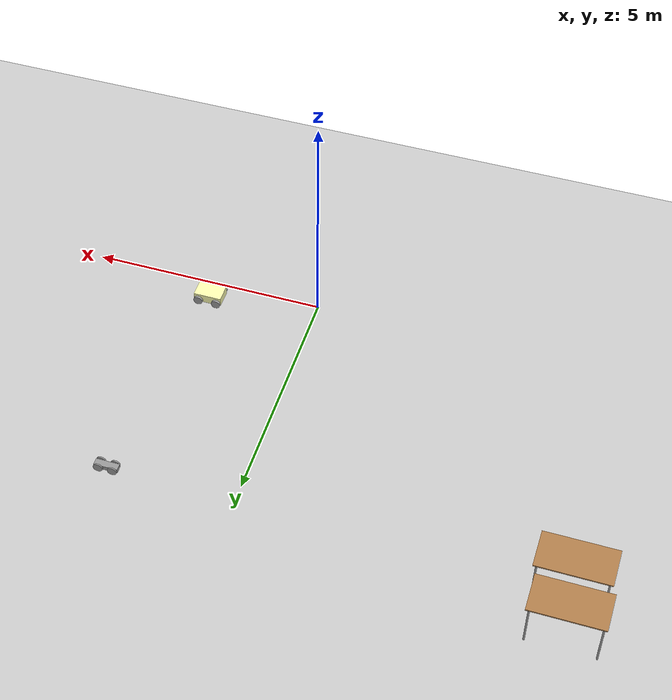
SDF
<sdf version="1.7">
 <world name="default">
  <model name="ground_plane">
   <static>1</static>
   <link name="link">
    <collision name="collision">
     <geometry><plane><normal>0 0 1</normal><size>100 100</size></plane></geometry>
     <surface>
      <contact><collide_bitmask>65535</collide_bitmask></contact>
      <friction><ode><mu>100</mu><mu2>50</mu2></ode></friction>
     </surface>
    </collision>
    <visual name="visual">
     <cast_shadows>0</cast_shadows>
     <geometry><plane><normal>0 0 1</normal><size>100 100</size></plane></geometry>
     <material>
      <script><uri>file://media/materials/scripts/gazebo.material</uri><name>Gazebo/Grey</name></script>
     </material>
    </visual>
   </link>
  </model>
  <model name="table">
   <static>1</static>
   <link name="link">
    <collision name="surface">
     <pose>0 0 1 0 -0 0</pose>
     <geometry><box><size>1.5 0.8 0.03</size></box></geometry>
     <surface><friction><ode><mu>0.6</mu><mu2>0.6</mu2></ode></friction></surface>
    </collision>
    <visual name="visual1">
     <pose>0 0 1 0 -0 0</pose>
     <geometry><box><size>1.5 0.8 0.03</size></box></geometry>
     <material>
      <script><uri>file://media/materials/scripts/gazebo.material</uri><name>Gazebo/Wood</name></script>
     </material>
    </visual>
    <collision name="front_left_leg">
     <pose>0.68 0.38 0.5 0 -0 0</pose>
     <geometry><cylinder><radius>0.02</radius><length>1</length></cylinder></geometry>
    </collision>
    <visual name="front_left_leg">
     <pose>0.68 0.38 0.5 0 -0 0</pose>
     <geometry><cylinder><radius>0.02</radius><length>1</length></cylinder></geometry>
     <material>
      <script><uri>file://media/materials/scripts/gazebo.material</uri><name>Gazebo/Grey</name></script>
     </material>
    </visual>
    <collision name="front_right_leg">
     <pose>0.68 -0.38 0.5 0 -0 0</pose>
     <geometry><cylinder><radius>0.02</radius><length>1</length></cylinder></geometry>
    </collision>
    <visual name="front_right_leg">
     <pose>0.68 -0.38 0.5 0 -0 0</pose>
     <geometry><cylinder><radius>0.02</radius><length>1</length></cylinder></geometry>
     <material>
      <script><uri>file://media/materials/scripts/gazebo.material</uri><name>Gazebo/Grey</name></script>
     </material>
    </visual>
    <collision name="back_right_leg">
     <pose>-0.68 -0.38 0.5 0 -0 0</pose>
     <geometry><cylinder><radius>0.02</radius><length>1</length></cylinder></geometry>
    </collision>
    <visual name="back_right_leg">
     <pose>-0.68 -0.38 0.5 0 -0 0</pose>
     <geometry><cylinder><radius>0.02</radius><length>1</length></cylinder></geometry>
     <material>
      <script><uri>file://media/materials/scripts/gazebo.material</uri><name>Gazebo/Grey</name></script>
     </material>
    </visual>
    <collision name="back_left_leg">
     <pose>-0.68 0.38 0.5 0 -0 0</pose>
     <geometry><cylinder><radius>0.02</radius><length>1</length></cylinder></geometry>
    </collision>
    <visual name="back_left_leg">
     <pose>-0.68 0.38 0.5 0 -0 0</pose>
     <geometry><cylinder><radius>0.02</radius><length>1</length></cylinder></geometry>
     <material>
      <script><uri>file://media/materials/scripts/gazebo.material</uri><name>Gazebo/Grey</name></script>
     </material>
    </visual>
   </link>
   <pose>-6.73396 6.32462 0 0 -0 0</pose>
  </model>
  <model name="table_clone">
   <static>1</static>
   <link name="link">
    <collision name="surface">
     <pose>0 0 1 0 -0 0</pose>
     <geometry><box><size>1.5 0.8 0.03</size></box></geometry>
     <surface><friction><ode><mu>0.6</mu><mu2>0.6</mu2></ode></friction></surface>
    </collision>
    <visual name="visual1">
     <pose>0 0 1 0 -0 0</pose>
     <geometry><box><size>1.5 0.8 0.03</size></box></geometry>
     <material>
      <script><uri>file://media/materials/scripts/gazebo.material</uri><name>Gazebo/Wood</name></script>
     </material>
    </visual>
    <collision name="front_left_leg">
     <pose>0.68 0.38 0.5 0 -0 0</pose>
     <geometry><cylinder><radius>0.02</radius><length>1</length></cylinder></geometry>
    </collision>
    <visual name="front_left_leg">
     <pose>0.68 0.38 0.5 0 -0 0</pose>
     <geometry><cylinder><radius>0.02</radius><length>1</length></cylinder></geometry>
     <material>
      <script><uri>file://media/materials/scripts/gazebo.material</uri><name>Gazebo/Grey</name></script>
     </material>
    </visual>
    <collision name="front_right_leg">
     <pose>0.68 -0.38 0.5 0 -0 0</pose>
     <geometry><cylinder><radius>0.02</radius><length>1</length></cylinder></geometry>
    </collision>
    <visual name="front_right_leg">
     <pose>0.68 -0.38 0.5 0 -0 0</pose>
     <geometry><cylinder><radius>0.02</radius><length>1</length></cylinder></geometry>
     <material>
      <script><uri>file://media/materials/scripts/gazebo.material</uri><name>Gazebo/Grey</name></script>
     </material>
    </visual>
    <collision name="back_right_leg">
     <pose>-0.68 -0.38 0.5 0 -0 0</pose>
     <geometry><cylinder><radius>0.02</radius><length>1</length></cylinder></geometry>
    </collision>
    <visual name="back_right_leg">
     <pose>-0.68 -0.38 0.5 0 -0 0</pose>
     <geometry><cylinder><radius>0.02</radius><length>1</length></cylinder></geometry>
     <material>
      <script><uri>file://media/materials/scripts/gazebo.material</uri><name>Gazebo/Grey</name></script>
     </material>
    </visual>
    <collision name="back_left_leg">
     <pose>-0.68 0.38 0.5 0 -0 0</pose>
     <geometry><cylinder><radius>0.02</radius><length>1</length></cylinder></geometry>
    </collision>
    <visual name="back_left_leg">
     <pose>-0.68 0.38 0.5 0 -0 0</pose>
     <geometry><cylinder><radius>0.02</radius><length>1</length></cylinder></geometry>
     <material>
      <script><uri>file://media/materials/scripts/gazebo.material</uri><name>Gazebo/Grey</name></script>
     </material>
    </visual>
   </link>
   <pose>-6.6553 5.36265 0 0 -0 0</pose>
  </model>
  <model name="vehicleRobot">
   <link name="link_3">
    <pose>0 -0.0017 0 0 -0 0</pose>
    <inertial>
     <mass>1</mass>
     <inertia>
      <ixx>0.166667</ixx>
      <ixy>0</ixy>
      <ixz>0</ixz>
      <iyy>0.166667</iyy>
      <iyz>0</iyz>
      <izz>0.166667</izz>
     </inertia>
    </inertial>
    <visual name="visual">
     <geometry><box><size>0.5 0.15 0.1</size></box></geometry>
     <material>
      <lighting>1</lighting>
      <script><uri>file://media/materials/scripts/gazebo.material</uri><name>Gazebo/Grey</name></script>
      <shader type="pixel"><normal_map>__default__</normal_map></shader>
      <ambient>0.3 0.3 0.3 1</ambient>
      <diffuse>0.7 0.7 0.7 1</diffuse>
      <specular>0.01 0.01 0.01 1</specular>
      <emissive>0 0 0 1</emissive>
     </material>
    </visual>
    <collision name="collision">
     <geometry><box><size>0.5 0.15 0.1</size></box></geometry>
     <surface>
      <friction>
       <ode><mu>1</mu><mu2>1</mu2><fdir1>0 0 0</fdir1><slip1>0</slip1><slip2>0</slip2></ode>
       <torsional>
        <coefficient>1</coefficient>
        <patch_radius>0</patch_radius>
        <surface_radius>0</surface_radius>
        <use_patch_radius>1</use_patch_radius>
        <ode><slip>0</slip></ode>
       </torsional>
      </friction>
      <bounce><restitution_coefficient>0</restitution_coefficient><threshold>1e+06</threshold></bounce>
      <contact>
       <collide_without_contact>0</collide_without_contact>
       <collide_without_contact_bitmask>1</collide_without_contact_bitmask>
       <collide_bitmask>1</collide_bitmask>
       <ode>
        <soft_cfm>0</soft_cfm>
        <soft_erp>0.2</soft_erp>
        <kp>1e+13</kp>
        <kd>1</kd>
        <max_vel>0.01</max_vel>
        <min_depth>0</min_depth>
       </ode>
       <bullet>
        <split_impulse>1</split_impulse>
        <split_impulse_penetration_threshold>-0.01</split_impulse_penetration_threshold>
        <soft_cfm>0</soft_cfm>
        <soft_erp>0.2</soft_erp>
        <kp>1e+13</kp>
        <kd>1</kd>
       </bullet>
      </contact>
     </surface>
    </collision>
   </link>
   <link name="link_4_clone">
    <pose>-0.15 -0.0917 0 1.5708 -0 0</pose>
    <inertial>
     <mass>1</mass>
     <inertia><ixx>0.145833</ixx><ixy>0</ixy><ixz>0</ixz><iyy>0.145833</iyy><iyz>0</iyz><izz>0.125</izz></inertia>
    </inertial>
    <visual name="visual">
     <geometry><cylinder><radius>0.1</radius><length>0.03</length></cylinder></geometry>
     <material>
      <lighting>1</lighting>
      <script><uri>file://media/materials/scripts/gazebo.material</uri><name>Gazebo/Grey</name></script>
      <shader type="pixel"><normal_map>__default__</normal_map></shader>
      <ambient>0.3 0.3 0.3 1</ambient>
      <diffuse>0.7 0.7 0.7 1</diffuse>
      <specular>0.01 0.01 0.01 1</specular>
      <emissive>0 0 0 1</emissive>
     </material>
    </visual>
    <collision name="collision">
     <geometry><cylinder><radius>0.1</radius><length>0.03</length></cylinder></geometry>
     <surface>
      <friction>
       <ode><mu>1</mu><mu2>1</mu2><fdir1>0 0 0</fdir1><slip1>0</slip1><slip2>0</slip2></ode>
       <torsional>
        <coefficient>1</coefficient>
        <patch_radius>0</patch_radius>
        <surface_radius>0</surface_radius>
        <use_patch_radius>1</use_patch_radius>
        <ode><slip>0</slip></ode>
       </torsional>
      </friction>
      <bounce><restitution_coefficient>0</restitution_coefficient><threshold>1e+06</threshold></bounce>
      <contact>
       <collide_without_contact>0</collide_without_contact>
       <collide_without_contact_bitmask>1</collide_without_contact_bitmask>
       <collide_bitmask>1</collide_bitmask>
       <ode>
        <soft_cfm>0</soft_cfm>
        <soft_erp>0.2</soft_erp>
        <kp>1e+13</kp>
        <kd>1</kd>
        <max_vel>0.01</max_vel>
        <min_depth>0</min_depth>
       </ode>
       <bullet>
        <split_impulse>1</split_impulse>
        <split_impulse_penetration_threshold>-0.01</split_impulse_penetration_threshold>
        <soft_cfm>0</soft_cfm>
        <soft_erp>0.2</soft_erp>
        <kp>1e+13</kp>
        <kd>1</kd>
       </bullet>
      </contact>
     </surface>
    </collision>
   </link>
   <link name="link_4_clone_0">
    <pose>0.15 -0.0917 -0 1.5708 -0 0</pose>
    <inertial>
     <mass>1</mass>
     <inertia><ixx>0.145833</ixx><ixy>0</ixy><ixz>0</ixz><iyy>0.145833</iyy><iyz>0</iyz><izz>0.125</izz></inertia>
    </inertial>
    <visual name="visual">
     <geometry><cylinder><radius>0.1</radius><length>0.03</length></cylinder></geometry>
     <material>
      <lighting>1</lighting>
      <script><uri>file://media/materials/scripts/gazebo.material</uri><name>Gazebo/Grey</name></script>
      <shader type="pixel"><normal_map>__default__</normal_map></shader>
      <ambient>0.3 0.3 0.3 1</ambient>
      <diffuse>0.7 0.7 0.7 1</diffuse>
      <specular>0.01 0.01 0.01 1</specular>
      <emissive>0 0 0 1</emissive>
     </material>
    </visual>
    <collision name="collision">
     <geometry><cylinder><radius>0.1</radius><length>0.03</length></cylinder></geometry>
     <surface>
      <friction>
       <ode><mu>1</mu><mu2>1</mu2><fdir1>0 0 0</fdir1><slip1>0</slip1><slip2>0</slip2></ode>
       <torsional>
        <coefficient>1</coefficient>
        <patch_radius>0</patch_radius>
        <surface_radius>0</surface_radius>
        <use_patch_radius>1</use_patch_radius>
        <ode><slip>0</slip></ode>
       </torsional>
      </friction>
      <bounce><restitution_coefficient>0</restitution_coefficient><threshold>1e+06</threshold></bounce>
      <contact>
       <collide_without_contact>0</collide_without_contact>
       <collide_without_contact_bitmask>1</collide_without_contact_bitmask>
       <collide_bitmask>1</collide_bitmask>
       <ode>
        <soft_cfm>0</soft_cfm>
        <soft_erp>0.2</soft_erp>
        <kp>1e+13</kp>
        <kd>1</kd>
        <max_vel>0.01</max_vel>
        <min_depth>0</min_depth>
       </ode>
       <bullet>
        <split_impulse>1</split_impulse>
        <split_impulse_penetration_threshold>-0.01</split_impulse_penetration_threshold>
        <soft_cfm>0</soft_cfm>
        <soft_erp>0.2</soft_erp>
        <kp>1e+13</kp>
        <kd>1</kd>
       </bullet>
      </contact>
     </surface>
    </collision>
   </link>
   <link name="link_4_clone_1">
    <pose>-0.15 0.09255 0 1.5708 -0 0</pose>
    <inertial>
     <mass>1</mass>
     <inertia><ixx>0.145833</ixx><ixy>0</ixy><ixz>0</ixz><iyy>0.145833</iyy><iyz>0</iyz><izz>0.125</izz></inertia>
    </inertial>
    <visual name="visual">
     <geometry><cylinder><radius>0.1</radius><length>0.03</length></cylinder></geometry>
     <material>
      <lighting>1</lighting>
      <script><uri>file://media/materials/scripts/gazebo.material</uri><name>Gazebo/Grey</name></script>
      <shader type="pixel"><normal_map>__default__</normal_map></shader>
      <ambient>0.3 0.3 0.3 1</ambient>
      <diffuse>0.7 0.7 0.7 1</diffuse>
      <specular>0.01 0.01 0.01 1</specular>
      <emissive>0 0 0 1</emissive>
     </material>
    </visual>
    <collision name="collision">
     <geometry><cylinder><radius>0.1</radius><length>0.03</length></cylinder></geometry>
     <surface>
      <friction>
       <ode><mu>1</mu><mu2>1</mu2><fdir1>0 0 0</fdir1><slip1>0</slip1><slip2>0</slip2></ode>
       <torsional>
        <coefficient>1</coefficient>
        <patch_radius>0</patch_radius>
        <surface_radius>0</surface_radius>
        <use_patch_radius>1</use_patch_radius>
        <ode><slip>0</slip></ode>
       </torsional>
      </friction>
      <bounce><restitution_coefficient>0</restitution_coefficient><threshold>1e+06</threshold></bounce>
      <contact>
       <collide_without_contact>0</collide_without_contact>
       <collide_without_contact_bitmask>1</collide_without_contact_bitmask>
       <collide_bitmask>1</collide_bitmask>
       <ode>
        <soft_cfm>0</soft_cfm>
        <soft_erp>0.2</soft_erp>
        <kp>1e+13</kp>
        <kd>1</kd>
        <max_vel>0.01</max_vel>
        <min_depth>0</min_depth>
       </ode>
       <bullet>
        <split_impulse>1</split_impulse>
        <split_impulse_penetration_threshold>-0.01</split_impulse_penetration_threshold>
        <soft_cfm>0</soft_cfm>
        <soft_erp>0.2</soft_erp>
        <kp>1e+13</kp>
        <kd>1</kd>
       </bullet>
      </contact>
     </surface>
    </collision>
   </link>
   <link name="link_4_clone_1_clone">
    <pose>0.15 0.09255 0 1.5708 -0 0</pose>
    <inertial>
     <mass>1</mass>
     <inertia><ixx>0.145833</ixx><ixy>0</ixy><ixz>0</ixz><iyy>0.145833</iyy><iyz>0</iyz><izz>0.125</izz></inertia>
    </inertial>
    <visual name="visual">
     <geometry><cylinder><radius>0.1</radius><length>0.03</length></cylinder></geometry>
     <material>
      <lighting>1</lighting>
      <script><uri>file://media/materials/scripts/gazebo.material</uri><name>Gazebo/Grey</name></script>
      <shader type="pixel"><normal_map>__default__</normal_map></shader>
      <ambient>0.3 0.3 0.3 1</ambient>
      <diffuse>0.7 0.7 0.7 1</diffuse>
      <specular>0.01 0.01 0.01 1</specular>
      <emissive>0 0 0 1</emissive>
     </material>
    </visual>
    <collision name="collision">
     <geometry><cylinder><radius>0.1</radius><length>0.03</length></cylinder></geometry>
     <surface>
      <friction>
       <ode><mu>1</mu><mu2>1</mu2><fdir1>0 0 0</fdir1><slip1>0</slip1><slip2>0</slip2></ode>
       <torsional>
        <coefficient>1</coefficient>
        <patch_radius>0</patch_radius>
        <surface_radius>0</surface_radius>
        <use_patch_radius>1</use_patch_radius>
        <ode><slip>0</slip></ode>
       </torsional>
      </friction>
      <bounce><restitution_coefficient>0</restitution_coefficient><threshold>1e+06</threshold></bounce>
      <contact>
       <collide_without_contact>0</collide_without_contact>
       <collide_without_contact_bitmask>1</collide_without_contact_bitmask>
       <collide_bitmask>1</collide_bitmask>
       <ode>
        <soft_cfm>0</soft_cfm>
        <soft_erp>0.2</soft_erp>
        <kp>1e+13</kp>
        <kd>1</kd>
        <max_vel>0.01</max_vel>
        <min_depth>0</min_depth>
       </ode>
       <bullet>
        <split_impulse>1</split_impulse>
        <split_impulse_penetration_threshold>-0.01</split_impulse_penetration_threshold>
        <soft_cfm>0</soft_cfm>
        <soft_erp>0.2</soft_erp>
        <kp>1e+13</kp>
        <kd>1</kd>
       </bullet>
      </contact>
     </surface>
    </collision>
   </link>
   <joint name="link_3_JOINT_2" type="revolute">
    <parent>link_3</parent>
    <child>link_4_clone_0</child>
    <axis>
     <xyz>0 0 1</xyz>
     <limit>
      <lower>-1.79769e+308</lower>
      <upper>1.79769e+308</upper>
      <effort>-1</effort>
      <velocity>-1</velocity>
     </limit>
     <dynamics>
      <spring_reference>0</spring_reference>
      <spring_stiffness>0</spring_stiffness>
      <damping>0</damping>
      <friction>0</friction>
     </dynamics>
    </axis>
    <physics>
     <ode><limit><cfm>0</cfm><erp>0.2</erp></limit><suspension><cfm>0</cfm><erp>0.2</erp></suspension></ode>
    </physics>
   </joint>
   <joint name="link_3_JOINT_3" type="revolute">
    <parent>link_3</parent>
    <child>link_4_clone</child>
    <axis>
     <xyz>0 0 1</xyz>
     <limit>
      <lower>-1.79769e+308</lower>
      <upper>1.79769e+308</upper>
      <effort>-1</effort>
      <velocity>-1</velocity>
     </limit>
     <dynamics>
      <spring_reference>0</spring_reference>
      <spring_stiffness>0</spring_stiffness>
      <damping>0</damping>
     </dynamics>
    </axis>
    <physics>
     <ode><limit><cfm>0</cfm><erp>0.2</erp></limit><suspension><cfm>0</cfm><erp>0.2</erp></suspension></ode>
    </physics>
   </joint>
   <joint name="link_3_JOINT_8" type="revolute">
    <parent>link_3</parent>
    <child>link_4_clone_1_clone</child>
    <axis>
     <xyz>0 0 1</xyz>
     <limit>
      <lower>-1.79769e+308</lower>
      <upper>1.79769e+308</upper>
      <effort>-1</effort>
      <velocity>-1</velocity>
     </limit>
     <dynamics>
      <spring_reference>0</spring_reference>
      <spring_stiffness>0</spring_stiffness>
      <damping>0</damping>
     </dynamics>
    </axis>
    <physics>
     <ode><limit><cfm>0</cfm><erp>0.2</erp></limit><suspension><cfm>0</cfm><erp>0.2</erp></suspension></ode>
    </physics>
   </joint>
   <joint name="link_3_JOINT_9" type="revolute">
    <parent>link_3</parent>
    <child>link_4_clone_1</child>
    <axis>
     <xyz>0 0 1</xyz>
     <limit>
      <lower>-1.79769e+308</lower>
      <upper>1.79769e+308</upper>
      <effort>-1</effort>
      <velocity>-1</velocity>
     </limit>
     <dynamics>
      <spring_reference>0</spring_reference>
      <spring_stiffness>0</spring_stiffness>
      <damping>0</damping>
     </dynamics>
    </axis>
    <physics>
     <ode><limit><cfm>0</cfm><erp>0.2</erp></limit><suspension><cfm>0</cfm><erp>0.2</erp></suspension></ode>
    </physics>
   </joint>
   <static>0</static>
   <pose>2.68096 5.3953 0.099992 1e-06 -1.1e-05 -0.000664</pose>
  </model>
  <model name="robot2">
   <link name="link_0">
    <pose>0 -0 0.1 0 -0 0</pose>
    <inertial>
     <mass>1</mass>
     <inertia>
      <ixx>0.166667</ixx>
      <ixy>0</ixy>
      <ixz>0</ixz>
      <iyy>0.166667</iyy>
      <iyz>0</iyz>
      <izz>0.166667</izz>
     </inertia>
    </inertial>
    <visual name="visual">
     <geometry><box><size>0.6 0.4 0.2</size></box></geometry>
     <material>
      <lighting>1</lighting>
      <script><uri>file://media/materials/scripts/gazebo.material</uri><name>Gazebo/Grey</name></script>
      <shader type="pixel"><normal_map>__default__</normal_map></shader>
      <ambient>1 0.3 0.3 1</ambient>
      <diffuse>1 1 0.7 1</diffuse>
      <specular>1 0.01 0.01 1</specular>
      <emissive>1 0 0 1</emissive>
     </material>
    </visual>
    <collision name="collision">
     <geometry><box><size>0.6 0.4 0.2</size></box></geometry>
     <surface>
      <friction>
       <ode><mu>1</mu><mu2>1</mu2><fdir1>0 0 0</fdir1><slip1>0</slip1><slip2>0</slip2></ode>
       <torsional>
        <coefficient>1</coefficient>
        <patch_radius>0</patch_radius>
        <surface_radius>0</surface_radius>
        <use_patch_radius>1</use_patch_radius>
        <ode><slip>0</slip></ode>
       </torsional>
      </friction>
      <bounce><restitution_coefficient>0</restitution_coefficient><threshold>1e+06</threshold></bounce>
      <contact>
       <collide_without_contact>0</collide_without_contact>
       <collide_without_contact_bitmask>1</collide_without_contact_bitmask>
       <collide_bitmask>1</collide_bitmask>
       <ode>
        <soft_cfm>0</soft_cfm>
        <soft_erp>0.2</soft_erp>
        <kp>1e+13</kp>
        <kd>1</kd>
        <max_vel>0.01</max_vel>
        <min_depth>0</min_depth>
       </ode>
       <bullet>
        <split_impulse>1</split_impulse>
        <split_impulse_penetration_threshold>-0.01</split_impulse_penetration_threshold>
        <soft_cfm>0</soft_cfm>
        <soft_erp>0.2</soft_erp>
        <kp>1e+13</kp>
        <kd>1</kd>
       </bullet>
      </contact>
     </surface>
    </collision>
   </link>
   <link name="link_0_0">
    <pose>-0.2 -0.225 0.05 1.5708 -0 0</pose>
    <inertial>
     <mass>1</mass>
     <inertia><ixx>0.145833</ixx><ixy>0</ixy><ixz>0</ixz><iyy>0.145833</iyy><iyz>0</iyz><izz>0.125</izz></inertia>
    </inertial>
    <visual name="visual">
     <geometry><cylinder><radius>0.1</radius><length>0.05</length></cylinder></geometry>
     <material>
      <lighting>1</lighting>
      <script><uri>file://media/materials/scripts/gazebo.material</uri><name>Gazebo/Grey</name></script>
      <shader type="pixel"><normal_map>__default__</normal_map></shader>
      <ambient>0.3 0.3 0.3 1</ambient>
      <diffuse>0.7 0.7 0.7 1</diffuse>
      <specular>0.01 0.01 0.01 1</specular>
      <emissive>0 0 0 1</emissive>
     </material>
    </visual>
    <collision name="collision">
     <geometry><cylinder><radius>0.1</radius><length>0.05</length></cylinder></geometry>
     <surface>
      <friction>
       <ode><mu>1</mu><mu2>1</mu2><fdir1>0 0 0</fdir1><slip1>0</slip1><slip2>0</slip2></ode>
       <torsional>
        <coefficient>1</coefficient>
        <patch_radius>0</patch_radius>
        <surface_radius>0</surface_radius>
        <use_patch_radius>1</use_patch_radius>
        <ode><slip>0</slip></ode>
       </torsional>
      </friction>
      <bounce><restitution_coefficient>0</restitution_coefficient><threshold>1e+06</threshold></bounce>
      <contact>
       <collide_without_contact>0</collide_without_contact>
       <collide_without_contact_bitmask>1</collide_without_contact_bitmask>
       <collide_bitmask>1</collide_bitmask>
       <ode>
        <soft_cfm>0</soft_cfm>
        <soft_erp>0.2</soft_erp>
        <kp>1e+13</kp>
        <kd>1</kd>
        <max_vel>0.01</max_vel>
        <min_depth>0</min_depth>
       </ode>
       <bullet>
        <split_impulse>1</split_impulse>
        <split_impulse_penetration_threshold>-0.01</split_impulse_penetration_threshold>
        <soft_cfm>0</soft_cfm>
        <soft_erp>0.2</soft_erp>
        <kp>1e+13</kp>
        <kd>1</kd>
       </bullet>
      </contact>
     </surface>
    </collision>
   </link>
   <link name="link_0_0_clone">
    <pose>-0.2 0.225 0.05 1.5708 -0 0</pose>
    <inertial>
     <mass>1</mass>
     <inertia><ixx>0.145833</ixx><ixy>0</ixy><ixz>0</ixz><iyy>0.145833</iyy><iyz>0</iyz><izz>0.125</izz></inertia>
    </inertial>
    <visual name="visual_0">
     <geometry><cylinder><radius>0.1</radius><length>0.05</length></cylinder></geometry>
     <material>
      <lighting>1</lighting>
      <script><uri>file://media/materials/scripts/gazebo.material</uri><name>Gazebo/Grey</name></script>
      <shader type="pixel"><normal_map>__default__</normal_map></shader>
      <ambient>0.3 0.3 0.3 1</ambient>
      <diffuse>0.7 0.7 0.7 1</diffuse>
      <specular>0.01 0.01 0.01 1</specular>
      <emissive>0 0 0 1</emissive>
     </material>
    </visual>
    <collision name="collision">
     <geometry><cylinder><radius>0.1</radius><length>0.05</length></cylinder></geometry>
     <surface>
      <friction>
       <ode><mu>1</mu><mu2>1</mu2><fdir1>0 0 0</fdir1><slip1>0</slip1><slip2>0</slip2></ode>
       <torsional>
        <coefficient>1</coefficient>
        <patch_radius>0</patch_radius>
        <surface_radius>0</surface_radius>
        <use_patch_radius>1</use_patch_radius>
        <ode><slip>0</slip></ode>
       </torsional>
      </friction>
      <bounce><restitution_coefficient>0</restitution_coefficient><threshold>1e+06</threshold></bounce>
      <contact>
       <collide_without_contact>0</collide_without_contact>
       <collide_without_contact_bitmask>1</collide_without_contact_bitmask>
       <collide_bitmask>1</collide_bitmask>
       <ode>
        <soft_cfm>0</soft_cfm>
        <soft_erp>0.2</soft_erp>
        <kp>1e+13</kp>
        <kd>1</kd>
        <max_vel>0.01</max_vel>
        <min_depth>0</min_depth>
       </ode>
       <bullet>
        <split_impulse>1</split_impulse>
        <split_impulse_penetration_threshold>-0.01</split_impulse_penetration_threshold>
        <soft_cfm>0</soft_cfm>
        <soft_erp>0.2</soft_erp>
        <kp>1e+13</kp>
        <kd>1</kd>
       </bullet>
      </contact>
     </surface>
    </collision>
   </link>
   <link name="link_0_0_clone_0">
    <pose>0.2 0.225 0.05 1.5708 -0 0</pose>
    <inertial>
     <mass>1</mass>
     <inertia><ixx>0.145833</ixx><ixy>0</ixy><ixz>0</ixz><iyy>0.145833</iyy><iyz>0</iyz><izz>0.125</izz></inertia>
    </inertial>
    <visual name="visual_0">
     <geometry><cylinder><radius>0.1</radius><length>0.05</length></cylinder></geometry>
     <material>
      <lighting>1</lighting>
      <script><uri>file://media/materials/scripts/gazebo.material</uri><name>Gazebo/Grey</name></script>
      <shader type="pixel"><normal_map>__default__</normal_map></shader>
      <ambient>0.3 0.3 0.3 1</ambient>
      <diffuse>0.7 0.7 0.7 1</diffuse>
      <specular>0.01 0.01 0.01 1</specular>
      <emissive>0 0 0 1</emissive>
     </material>
    </visual>
    <collision name="collision">
     <geometry><cylinder><radius>0.1</radius><length>0.05</length></cylinder></geometry>
     <surface>
      <friction>
       <ode><mu>1</mu><mu2>1</mu2><fdir1>0 0 0</fdir1><slip1>0</slip1><slip2>0</slip2></ode>
       <torsional>
        <coefficient>1</coefficient>
        <patch_radius>0</patch_radius>
        <surface_radius>0</surface_radius>
        <use_patch_radius>1</use_patch_radius>
        <ode><slip>0</slip></ode>
       </torsional>
      </friction>
      <bounce><restitution_coefficient>0</restitution_coefficient><threshold>1e+06</threshold></bounce>
      <contact>
       <collide_without_contact>0</collide_without_contact>
       <collide_without_contact_bitmask>1</collide_without_contact_bitmask>
       <collide_bitmask>1</collide_bitmask>
       <ode>
        <soft_cfm>0</soft_cfm>
        <soft_erp>0.2</soft_erp>
        <kp>1e+13</kp>
        <kd>1</kd>
        <max_vel>0.01</max_vel>
        <min_depth>0</min_depth>
       </ode>
       <bullet>
        <split_impulse>1</split_impulse>
        <split_impulse_penetration_threshold>-0.01</split_impulse_penetration_threshold>
        <soft_cfm>0</soft_cfm>
        <soft_erp>0.2</soft_erp>
        <kp>1e+13</kp>
        <kd>1</kd>
       </bullet>
      </contact>
     </surface>
    </collision>
   </link>
   <link name="link_0_0_clone_1">
    <pose>0.2 -0.225 0.05 1.5708 -0 0</pose>
    <inertial>
     <mass>1</mass>
     <inertia><ixx>0.145833</ixx><ixy>0</ixy><ixz>0</ixz><iyy>0.145833</iyy><iyz>0</iyz><izz>0.125</izz></inertia>
    </inertial>
    <visual name="visual_0">
     <geometry><cylinder><radius>0.1</radius><length>0.05</length></cylinder></geometry>
     <material>
      <lighting>1</lighting>
      <script><uri>file://media/materials/scripts/gazebo.material</uri><name>Gazebo/Grey</name></script>
      <shader type="pixel"><normal_map>__default__</normal_map></shader>
      <ambient>0.3 0.3 0.3 1</ambient>
      <diffuse>0.7 0.7 0.7 1</diffuse>
      <specular>0.01 0.01 0.01 1</specular>
      <emissive>0 0 0 1</emissive>
     </material>
    </visual>
    <collision name="collision">
     <geometry><cylinder><radius>0.1</radius><length>0.05</length></cylinder></geometry>
     <surface>
      <friction>
       <ode><mu>1</mu><mu2>1</mu2><fdir1>0 0 0</fdir1><slip1>0</slip1><slip2>0</slip2></ode>
       <torsional>
        <coefficient>1</coefficient>
        <patch_radius>0</patch_radius>
        <surface_radius>0</surface_radius>
        <use_patch_radius>1</use_patch_radius>
        <ode><slip>0</slip></ode>
       </torsional>
      </friction>
      <bounce><restitution_coefficient>0</restitution_coefficient><threshold>1e+06</threshold></bounce>
      <contact>
       <collide_without_contact>0</collide_without_contact>
       <collide_without_contact_bitmask>1</collide_without_contact_bitmask>
       <collide_bitmask>1</collide_bitmask>
       <ode>
        <soft_cfm>0</soft_cfm>
        <soft_erp>0.2</soft_erp>
        <kp>1e+13</kp>
        <kd>1</kd>
        <max_vel>0.01</max_vel>
        <min_depth>0</min_depth>
       </ode>
       <bullet>
        <split_impulse>1</split_impulse>
        <split_impulse_penetration_threshold>-0.01</split_impulse_penetration_threshold>
        <soft_cfm>0</soft_cfm>
        <soft_erp>0.2</soft_erp>
        <kp>1e+13</kp>
        <kd>1</kd>
       </bullet>
      </contact>
     </surface>
    </collision>
   </link>
   <joint name="link_0_JOINT_0" type="revolute">
    <parent>link_0</parent>
    <child>link_0_0</child>
    <axis>
     <xyz>1 0 0</xyz>
     <limit>
      <lower>-1.79769e+308</lower>
      <upper>1.79769e+308</upper>
      <effort>-1</effort>
      <velocity>-1</velocity>
     </limit>
     <dynamics>
      <spring_reference>0</spring_reference>
      <spring_stiffness>0</spring_stiffness>
      <damping>0</damping>
      <friction>0</friction>
     </dynamics>
     <use_parent_model_frame>0</use_parent_model_frame>
    </axis>
    <physics>
     <ode><limit><cfm>0</cfm><erp>0.2</erp></limit><suspension><cfm>0</cfm><erp>0.2</erp></suspension></ode>
    </physics>
   </joint>
   <joint name="link_0_JOINT_1" type="revolute">
    <parent>link_0</parent>
    <child>link_0_0_clone</child>
    <axis>
     <xyz>1 0 0</xyz>
     <limit>
      <lower>-1.79769e+308</lower>
      <upper>1.79769e+308</upper>
      <effort>-1</effort>
      <velocity>-1</velocity>
     </limit>
     <dynamics>
      <spring_reference>0</spring_reference>
      <spring_stiffness>0</spring_stiffness>
      <damping>0</damping>
      <friction>0</friction>
     </dynamics>
     <use_parent_model_frame>0</use_parent_model_frame>
    </axis>
    <physics>
     <ode><limit><cfm>0</cfm><erp>0.2</erp></limit><suspension><cfm>0</cfm><erp>0.2</erp></suspension></ode>
    </physics>
   </joint>
   <joint name="link_0_JOINT_2" type="revolute">
    <parent>link_0</parent>
    <child>link_0_0_clone_0</child>
    <axis>
     <xyz>1 0 0</xyz>
     <limit>
      <lower>-1.79769e+308</lower>
      <upper>1.79769e+308</upper>
      <effort>-1</effort>
      <velocity>-1</velocity>
     </limit>
     <dynamics>
      <spring_reference>0</spring_reference>
      <spring_stiffness>0</spring_stiffness>
      <damping>0</damping>
      <friction>0</friction>
     </dynamics>
     <use_parent_model_frame>0</use_parent_model_frame>
    </axis>
    <physics>
     <ode><limit><cfm>0</cfm><erp>0.2</erp></limit><suspension><cfm>0</cfm><erp>0.2</erp></suspension></ode>
    </physics>
   </joint>
   <joint name="link_0_JOINT_3" type="revolute">
    <parent>link_0</parent>
    <child>link_0_0_clone_1</child>
    <axis>
     <xyz>1 0 0</xyz>
     <limit>
      <lower>-1.79769e+308</lower>
      <upper>1.79769e+308</upper>
      <effort>-1</effort>
      <velocity>-1</velocity>
     </limit>
     <dynamics>
      <spring_reference>0</spring_reference>
      <spring_stiffness>0</spring_stiffness>
      <damping>0</damping>
      <friction>0</friction>
     </dynamics>
     <use_parent_model_frame>0</use_parent_model_frame>
    </axis>
    <physics>
     <ode><limit><cfm>0</cfm><erp>0.2</erp></limit><suspension><cfm>0</cfm><erp>0.2</erp></suspension></ode>
    </physics>
   </joint>
   <static>0</static>
   <pose>2.30031 0.429118 0.05 -1e-06 0 0.000461</pose>
  </model>
 </world>
</sdf>
